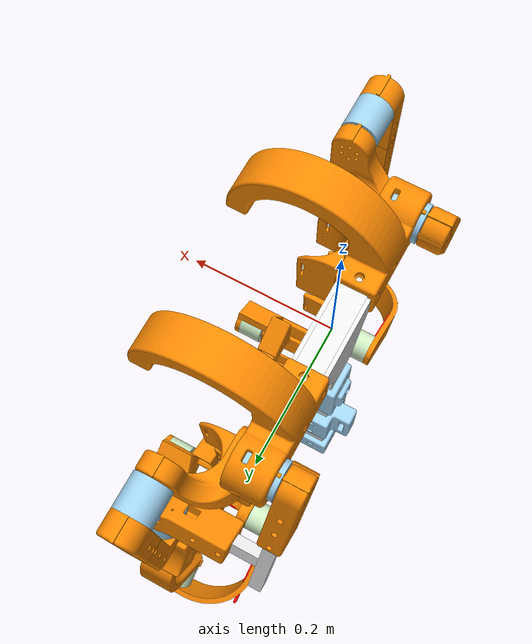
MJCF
<?xml version="1.0" ?>
<mujoco model="models">
  <compiler angle="radian" meshdir="assets" autolimits="true"/>
  <default>
    <default class="models">
      <joint frictionloss="0.1" armature="0.005"/>
      <position kp="50" dampratio="1"/>
      <default class="visual">
        <geom type="mesh" contype="0" conaffinity="0" group="2"/>
      </default>
      <default class="collision">
        <geom group="3"/>
      </default>
    </default>
  </default>
  <worldbody>
    <!-- Link dm_j4340_2ec -->
    <body name="dm_j4340_2ec" pos="0 0 0" quat="1 0 0 0" childclass="models">
      <freejoint name="dm_j4340_2ec_freejoint"/>
      <inertial pos="0.00114692 -0.0251961 -0.012025" mass="0.8837" fullinertia="0.0325559 0.00235183 0.0334678 0.00115048 -0.000622082 0.000713939"/>
      <!-- Part 4040x50cm -->
      <geom type="mesh" class="visual" pos="0 0 -0.54" quat="1 0 -0 -0" mesh="4040x50cm" material="4040x50cm_material"/>
      <geom type="mesh" class="collision" pos="0 0 -0.54" quat="1 0 -0 -0" mesh="4040x50cm" material="4040x50cm_material"/>
      <!-- Part v6_4040_belt -->
      <geom type="mesh" class="visual" pos="0.0004 0 -0.33" quat="0 0.707107 0.707107 0" mesh="v6_4040_belt" material="v6_4040_belt_material"/>
      <geom type="mesh" class="collision" pos="0.0004 0 -0.33" quat="0 0.707107 0.707107 0" mesh="v6_4040_belt" material="v6_4040_belt_material"/>
      <!-- Part 4040_ybimu -->
      <geom type="mesh" class="visual" pos="0.0002 -0 -0.23" quat="0.5 -0.5 -0.5 0.5" mesh="4040_ybimu" material="4040_ybimu_material"/>
      <geom type="mesh" class="collision" pos="0.0002 -0 -0.23" quat="0.5 -0.5 -0.5 0.5" mesh="4040_ybimu" material="4040_ybimu_material"/>
      <!-- Part v6_4040_j1_loop_r -->
      <geom type="mesh" class="visual" pos="0 -0.0615 -0.02" quat="1 0 0 0" mesh="v6_4040_j1_loop_r" material="v6_4040_j1_loop_r_material"/>
      <geom type="mesh" class="collision" pos="0 -0.0615 -0.02" quat="1 0 0 0" mesh="v6_4040_j1_loop_r" material="v6_4040_j1_loop_r_material"/>
      <!-- Part dm_j4340_2ec -->
      <geom type="mesh" class="visual" pos="0.015 0.2 -0.02" quat="0 -0.707107 0 0.707107" mesh="dm_j4340_2ec" material="dm_j4340_2ec_material"/>
      <geom type="mesh" class="collision" pos="0.015 0.2 -0.02" quat="0 -0.707107 0 0.707107" mesh="dm_j4340_2ec" material="dm_j4340_2ec_material"/>
      <!-- Part 4040_t_bracket -->
      <geom type="mesh" class="visual" pos="0.02 -0 -0.02" quat="0.5 0.5 0.5 0.5" mesh="4040_t_bracket" material="4040_t_bracket_material"/>
      <geom type="mesh" class="collision" pos="0.02 -0 -0.02" quat="0.5 0.5 0.5 0.5" mesh="4040_t_bracket" material="4040_t_bracket_material"/>
      <!-- Part dm_j4340_2ec_2 -->
      <geom type="mesh" class="visual" pos="0.015 -0.2 -0.02" quat="0.707107 0 -0.707107 0" mesh="dm_j4340_2ec" material="dm_j4340_2ec_material"/>
      <geom type="mesh" class="collision" pos="0.015 -0.2 -0.02" quat="0.707107 0 -0.707107 0" mesh="dm_j4340_2ec" material="dm_j4340_2ec_material"/>
      <!-- Part 4040_t_bracket_2 -->
      <geom type="mesh" class="visual" pos="-0.02 -0 -0.02" quat="0.5 0.5 -0.5 -0.5" mesh="4040_t_bracket" material="4040_t_bracket_material"/>
      <geom type="mesh" class="collision" pos="-0.02 -0 -0.02" quat="0.5 0.5 -0.5 -0.5" mesh="4040_t_bracket" material="4040_t_bracket_material"/>
      <!-- Part v6_4040_j1_loop_l -->
      <geom type="mesh" class="visual" pos="0 0.0615 -0.02" quat="1 0 0 0" mesh="v6_4040_j1_loop_l" material="v6_4040_j1_loop_l_material"/>
      <geom type="mesh" class="collision" pos="0 0.0615 -0.02" quat="1 0 0 0" mesh="v6_4040_j1_loop_l" material="v6_4040_j1_loop_l_material"/>
      <!-- Part 4040x30cm -->
      <geom type="mesh" class="visual" pos="0 0.15 -0.02" quat="0.707107 0.707107 0 -0" mesh="4040x30cm" material="4040x30cm_material"/>
      <geom type="mesh" class="collision" pos="0 0.15 -0.02" quat="0.707107 0.707107 0 -0" mesh="4040x30cm" material="4040x30cm_material"/>
      <!-- Part 4040_cap -->
      <geom type="mesh" class="visual" pos="0 0 -0.55" quat="1 0 -0 -0" mesh="4040_cap" material="4040_cap_material"/>
      <geom type="mesh" class="collision" pos="0 0 -0.55" quat="1 0 -0 -0" mesh="4040_cap" material="4040_cap_material"/>
      <!-- Frame imu -->
      <site group="3" name="imu" pos="-0.0298 -0 -0.229564" quat="0.707107 0 -0.707107 0"/>
      <!-- Link v6_j1_20 -->
      <body name="v6_j1_20" pos="-0.0383 -0.2 -0.02" quat="0.183013 0.683013 -0.183013 -0.683013">
        <!-- Joint from dm_j4340_2ec to v6_j1_20 -->
        <joint axis="0 0 1" name="RJ1" type="hinge"/>
        <inertial pos="0.150386 -5.99e-10 -0.0862657" mass="0.64749" fullinertia="0.0032465 0.00514141 0.00215547 6e-12 0.00180143 1.8e-11"/>
        <!-- Part v6_20_j2 -->
        <geom type="mesh" class="visual" pos="-0.0081 -0 0.036052" quat="0 -1 -0 0" mesh="v6_20_j2" material="v6_20_j2_material"/>
        <geom type="mesh" class="collision" pos="-0.0081 -0 0.036052" quat="0 -1 -0 0" mesh="v6_20_j2" material="v6_20_j2_material"/>
        <!-- Part v6_j1_20 -->
        <geom type="mesh" class="visual" pos="-0 0 0.036" quat="0 1 0 0" mesh="v6_j1_20" material="v6_j1_20_material"/>
        <geom type="mesh" class="collision" pos="-0 0 0.036" quat="0 1 0 0" mesh="v6_j1_20" material="v6_j1_20_material"/>
        <!-- Part 2020x20cm -->
        <geom type="mesh" class="visual" pos="0.2253 -0 0.018" quat="0 0.707107 0 -0.707107" mesh="2020x20cm" material="2020x20cm_material"/>
        <geom type="mesh" class="collision" pos="0.2253 -0 0.018" quat="0 0.707107 0 -0.707107" mesh="2020x20cm" material="2020x20cm_material"/>
        <!-- Part dm_j4340_2ec_3 -->
        <geom type="mesh" class="visual" pos="0.1532 0 -0.139098" quat="0.707107 -0 0.707107 -0" mesh="dm_j4340_2ec" material="dm_j4340_2ec_material"/>
        <geom type="mesh" class="collision" pos="0.1532 0 -0.139098" quat="0.707107 -0 0.707107 -0" mesh="dm_j4340_2ec" material="dm_j4340_2ec_material"/>
        <!-- Part 2020x10cm -->
        <geom type="mesh" class="visual" pos="0.1653 -0 -0.092" quat="0.707107 0 0 0.707107" mesh="2020x10cm" material="2020x10cm_material"/>
        <geom type="mesh" class="collision" pos="0.1653 -0 -0.092" quat="0.707107 0 0 0.707107" mesh="2020x10cm" material="2020x10cm_material"/>
        <!-- Link v6_20_j3 -->
        <body name="v6_20_j3" pos="0.2065 0 -0.139098" quat="0.5 0.5 0.5 0.5">
          <!-- Joint from v6_j1_20 to v6_20_j3 -->
          <joint axis="0 0 1" name="RJ2" type="hinge"/>
          <inertial pos="0.0816108 2.273e-09 -0.108365" mass="0.6629" fullinertia="0.00347714 0.00399968 0.000810527 1.64e-10 0.00105864 -1.66e-10"/>
          <!-- Part v6_j2_20 -->
          <geom type="mesh" class="visual" pos="0 -0.0285 0.0075" quat="0.683013 -0.683013 -0.183013 -0.183013" mesh="v6_j2_20" material="v6_j2_20_material"/>
          <geom type="mesh" class="collision" pos="0 -0.0285 0.0075" quat="0.683013 -0.683013 -0.183013 -0.183013" mesh="v6_j2_20" material="v6_j2_20_material"/>
          <!-- Part 2020x20cm_2 -->
          <geom type="mesh" class="visual" pos="0.127501 -0 -0.135474" quat="0.683013 0.183013 -0.183013 -0.683013" mesh="2020x20cm" material="2020x20cm_material"/>
          <geom type="mesh" class="collision" pos="0.127501 -0 -0.135474" quat="0.683013 0.183013 -0.183013 -0.683013" mesh="2020x20cm" material="2020x20cm_material"/>
          <!-- Part v6_20_j3 -->
          <geom type="mesh" class="visual" pos="-0 -0.0285 0.0075" quat="0.683013 -0.683013 -0.183013 -0.183013" mesh="v6_20_j3" material="v6_20_j3_material"/>
          <geom type="mesh" class="collision" pos="-0 -0.0285 0.0075" quat="0.683013 -0.683013 -0.183013 -0.183013" mesh="v6_20_j3" material="v6_20_j3_material"/>
          <!-- Part dm_j4340_2ec_4 -->
          <geom type="mesh" class="visual" pos="0.114169 0 -0.148384" quat="0.353553 0.612372 -0.612372 -0.353553" mesh="dm_j4340_2ec" material="dm_j4340_2ec_material"/>
          <geom type="mesh" class="collision" pos="0.114169 0 -0.148384" quat="0.353553 0.612372 -0.612372 -0.353553" mesh="dm_j4340_2ec" material="dm_j4340_2ec_material"/>
          <!-- Link v6_j3_2020_r -->
          <body name="v6_j3_2020_r" pos="0.0680103 0 -0.175034" quat="0.353553 0.612372 -0.612372 -0.353553">
            <!-- Joint from v6_20_j3 to v6_j3_2020_r -->
            <joint axis="0 0 1" name="RJ3" type="hinge"/>
            <inertial pos="-0.0212538 0.197218 0.0388781" mass="0.86248" fullinertia="0.00735386 0.00260883 0.00681043 -0.00104227 0.000890554 0.000819778"/>
            <!-- Part 2020x20cm_3 -->
            <geom type="mesh" class="visual" pos="-0.0681202 0.2685 0.078682" quat="0.707107 0.707107 0 -0" mesh="2020x20cm" material="2020x20cm_material"/>
            <geom type="mesh" class="collision" pos="-0.0681202 0.2685 0.078682" quat="0.707107 0.707107 0 -0" mesh="2020x20cm" material="2020x20cm_material"/>
            <!-- Part v6_2020_j4_r -->
            <geom type="mesh" class="visual" pos="-0.0681202 0.2885 0.078682" quat="0.5 0.5 -0.5 0.5" mesh="v6_2020_j4_r" material="v6_2020_j4_r_material"/>
            <geom type="mesh" class="collision" pos="-0.0681202 0.2885 0.078682" quat="0.5 0.5 -0.5 0.5" mesh="v6_2020_j4_r" material="v6_2020_j4_r_material"/>
            <!-- Part dm_j4340_2ec_5 -->
            <geom type="mesh" class="visual" pos="0.00787981 0.26 0.027332" quat="0 -1 0 -0" mesh="dm_j4340_2ec" material="dm_j4340_2ec_material"/>
            <geom type="mesh" class="collision" pos="0.00787981 0.26 0.027332" quat="0 -1 0 -0" mesh="dm_j4340_2ec" material="dm_j4340_2ec_material"/>
            <!-- Part v6_j3_2020_r -->
            <geom type="mesh" class="visual" pos="-0.0286202 0.0885 0.028682" quat="0.5 0.5 0.5 -0.5" mesh="v6_j3_2020_r" material="v6_j3_2020_r_material"/>
            <geom type="mesh" class="collision" pos="-0.0286202 0.0885 0.028682" quat="0.5 0.5 0.5 -0.5" mesh="v6_j3_2020_r" material="v6_j3_2020_r_material"/>
            <!-- Frame R_shoulder -->
            <site group="3" name="R_shoulder" pos="-0.000120192 -0 0.078682" quat="0.5 0.5 0.5 0.5"/>
            <!-- Link v6_j4_j5_r -->
            <body name="v6_j4_j5_r" pos="0.00787981 0.26 -0.025968" quat="0 0.707107 -0.707107 -0">
              <!-- Joint from v6_j3_2020_r to v6_j4_j5_r -->
              <joint axis="0 0 1" name="RJ4" type="hinge"/>
              <inertial pos="-0.054697 0.00944171 -0.00245461" mass="0.49139" fullinertia="0.00105657 0.00119188 0.000538644 -2.97344e-05 -0.000120659 0.000177465"/>
              <!-- Part dm_j4310_2ec -->
              <geom type="mesh" class="visual" pos="-0.0431803 0 0.0244282" quat="0.348175 0.615447 -0.615447 -0.348175" mesh="dm_j4310_2ec" material="dm_j4310_2ec_material"/>
              <geom type="mesh" class="collision" pos="-0.0431803 0 0.0244282" quat="0.348175 0.615447 -0.615447 -0.348175" mesh="dm_j4310_2ec" material="dm_j4310_2ec_material"/>
              <!-- Part v6_j4_j5_r -->
              <geom type="mesh" class="visual" pos="-0.0285 0.0285 0" quat="0.5 0.5 0.5 -0.5" mesh="v6_j4_j5_r" material="v6_j4_j5_r_material"/>
              <geom type="mesh" class="collision" pos="-0.0285 0.0285 0" quat="0.5 0.5 0.5 -0.5" mesh="v6_j4_j5_r" material="v6_j4_j5_r_material"/>
              <!-- Link v6_wrist_j5_j6 -->
              <body name="v6_wrist_j5_j6" pos="-0.0825226 -0 0.000785249" quat="0 -0.870373 0 0.492393">
                <!-- Joint from v6_j4_j5_r to v6_wrist_j5_j6 -->
                <joint axis="0 0 1" name="RJ5" type="hinge"/>
                <inertial pos="-0.145145 7.46224e-05 0.168843" mass="0.4484" fullinertia="0.00261478 0.00340573 0.00098092 -2.29433e-06 0.00132169 3.71339e-06"/>
                <!-- Part v6_wrist_j5_j6 -->
                <geom type="mesh" class="visual" pos="0 -0.0285 0.0075" quat="0.707107 -0.707107 -0 -0" mesh="v6_wrist_j5_j6" material="v6_wrist_j5_j6_material"/>
                <geom type="mesh" class="collision" pos="0 -0.0285 0.0075" quat="0.707107 -0.707107 -0 -0" mesh="v6_wrist_j5_j6" material="v6_wrist_j5_j6_material"/>
                <!-- Part v6_xt30_2_2_50cm -->
                <geom type="mesh" class="visual" pos="-0.0816102 0.005 0.0643898" quat="0.270598 0.270598 0.653281 -0.653281" mesh="v6_xt30_2_2_50cm" material="v6_xt30_2_2_50cm_material"/>
                <geom type="mesh" class="collision" pos="-0.0816102 0.005 0.0643898" quat="0.270598 0.270598 0.653281 -0.653281" mesh="v6_xt30_2_2_50cm" material="v6_xt30_2_2_50cm_material"/>
                <!-- Part dm_j4310_2ec_2 -->
                <geom type="mesh" class="visual" pos="-0.146 -0 0.212" quat="0.5 -0.5 -0.5 0.5" mesh="dm_j4310_2ec" material="dm_j4310_2ec_material"/>
                <geom type="mesh" class="collision" pos="-0.146 -0 0.212" quat="0.5 -0.5 -0.5 0.5" mesh="dm_j4310_2ec" material="dm_j4310_2ec_material"/>
                <!-- Link v5_wrist_j6_j7 -->
                <body name="v5_wrist_j6_j7" pos="-0.1919 0 0.212" quat="0 -0.707107 -0 0.707107">
                  <!-- Joint from v6_wrist_j5_j6 to v5_wrist_j6_j7 -->
                  <joint axis="0 0 1" name="RJ6" type="hinge"/>
                  <inertial pos="-0 0.0975631 -0.161926" mass="0.407" fullinertia="0.00180585 0.00164708 0.000326757 0 -0 0.000247612"/>
                  <!-- Part v5_wrist_j6_j7 -->
                  <geom type="mesh" class="visual" pos="0 0.131 -0.0955" quat="0.5 0.5 0.5 -0.5" mesh="v5_wrist_j6_j7" material="v5_wrist_j6_j7_material"/>
                  <geom type="mesh" class="collision" pos="0 0.131 -0.0955" quat="0.5 0.5 0.5 -0.5" mesh="v5_wrist_j6_j7" material="v5_wrist_j6_j7_material"/>
                  <!-- Part dm_j4310_2ec_3 -->
                  <geom type="mesh" class="visual" pos="-0 0.121 -0.191" quat="0.707107 0.707107 0 -0" mesh="dm_j4310_2ec" material="dm_j4310_2ec_material"/>
                  <geom type="mesh" class="collision" pos="-0 0.121 -0.191" quat="0.707107 0.707107 0 -0" mesh="dm_j4310_2ec" material="dm_j4310_2ec_material"/>
                  <!-- Part v6_xt30_2_2_50cm_2 -->
                  <geom type="mesh" class="visual" pos="0 0.121 -0.0925" quat="0.707107 0.707107 0 -0" mesh="v6_xt30_2_2_50cm" material="v6_xt30_2_2_50cm_material"/>
                  <geom type="mesh" class="collision" pos="0 0.121 -0.0925" quat="0.707107 0.707107 0 -0" mesh="v6_xt30_2_2_50cm" material="v6_xt30_2_2_50cm_material"/>
                  <!-- Link v5_wrist_j7_leader_gripper_r -->
                  <body name="v5_wrist_j7_leader_gripper_r" pos="-0 0.0751 -0.191" quat="0.5 0.5 -0.5 0.5">
                    <!-- Joint from v5_wrist_j6_j7 to v5_wrist_j7_leader_gripper_r -->
                    <joint axis="0 0 1" name="RJ7" type="hinge"/>
                    <inertial pos="-0.00205487 0.0647313 0.154012" mass="0.4573" fullinertia="0.00200291 0.00193779 0.000443531 -3.45159e-05 2.74273e-06 -0.000439089"/>
                    <!-- Part v6_xt30_2_2_50cm_3 -->
                    <geom type="mesh" class="visual" pos="0.025 0.0547059 0.0643213" quat="0.5 -0.5 0.5 -0.5" mesh="v6_xt30_2_2_50cm" material="v6_xt30_2_2_50cm_material"/>
                    <geom type="mesh" class="collision" pos="0.025 0.0547059 0.0643213" quat="0.5 -0.5 0.5 -0.5" mesh="v6_xt30_2_2_50cm" material="v6_xt30_2_2_50cm_material"/>
                    <!-- Part v5_wrist_j7_leader_gripper_r -->
                    <geom type="mesh" class="visual" pos="-0 0 0" quat="1 0 -0 -0" mesh="v5_wrist_j7_leader_gripper_r" material="v5_wrist_j7_leader_gripper_r_material"/>
                    <geom type="mesh" class="collision" pos="-0 0 0" quat="1 0 -0 -0" mesh="v5_wrist_j7_leader_gripper_r" material="v5_wrist_j7_leader_gripper_r_material"/>
                    <!-- Part dm_j4310_2ec_4 -->
                    <geom type="mesh" class="visual" pos="0 0.075 0.21" quat="0 -0.707107 0.707107 -0" mesh="dm_j4310_2ec" material="dm_j4310_2ec_material"/>
                    <geom type="mesh" class="collision" pos="0 0.075 0.21" quat="0 -0.707107 0.707107 -0" mesh="dm_j4310_2ec" material="dm_j4310_2ec_material"/>
                    <!-- Frame R_wrist -->
                    <site group="3" name="R_wrist" pos="0 0 0.0751" quat="0.707107 -0 -0 0.707107"/>
                    <!-- Link v5_j8_4finger -->
                    <body name="v5_j8_4finger" pos="-0 0.075 0.1641" quat="0 -0.707107 -0.707107 -0">
                      <!-- Joint from v5_wrist_j7_leader_gripper_r to v5_j8_4finger -->
                      <joint axis="0 0 1" name="RJ8" type="hinge"/>
                      <inertial pos="0.0582262 -2.729e-09 0.031412" mass="0.0384" fullinertia="3.92746e-05 6.14789e-05 2.96973e-05 -1e-12 -1.19931e-05 2e-12"/>
                      <!-- Part v5_j8_4finger -->
                      <geom type="mesh" class="visual" pos="-0 0 0.01" quat="0 1 0 0" mesh="v5_j8_4finger" material="v5_j8_4finger_material"/>
                      <geom type="mesh" class="collision" pos="-0 0 0.01" quat="0 1 0 0" mesh="v5_j8_4finger" material="v5_j8_4finger_material"/>
                    </body>
                  </body>
                </body>
              </body>
            </body>
          </body>
        </body>
      </body>
      <!-- Link dm_j4340_2ec_2 -->
      <body name="dm_j4340_2ec_2" pos="-0.0383 0.2 -0.02" quat="0.183013 -0.683013 -0.183013 0.683013">
        <!-- Joint from dm_j4340_2ec to dm_j4340_2ec_2 -->
        <joint axis="0 0 1" name="LJ1" type="hinge"/>
        <inertial pos="0.150386 -5.99e-10 -0.0862657" mass="0.64749" fullinertia="0.0032465 0.00514141 0.00215547 6e-12 0.00180143 1.8e-11"/>
        <!-- Part v6_j1_20_2 -->
        <geom type="mesh" class="visual" pos="-0 -0 0.036" quat="0 1 0 0" mesh="v6_j1_20" material="v6_j1_20_material"/>
        <geom type="mesh" class="collision" pos="-0 -0 0.036" quat="0 1 0 0" mesh="v6_j1_20" material="v6_j1_20_material"/>
        <!-- Part 2020x10cm_2 -->
        <geom type="mesh" class="visual" pos="0.1653 -0 -0.092" quat="0 0 -0 1" mesh="2020x10cm" material="2020x10cm_material"/>
        <geom type="mesh" class="collision" pos="0.1653 -0 -0.092" quat="0 0 -0 1" mesh="2020x10cm" material="2020x10cm_material"/>
        <!-- Part dm_j4340_2ec_6 -->
        <geom type="mesh" class="visual" pos="0.1532 -0 -0.139098" quat="0.707107 -0 0.707107 0" mesh="dm_j4340_2ec" material="dm_j4340_2ec_material"/>
        <geom type="mesh" class="collision" pos="0.1532 -0 -0.139098" quat="0.707107 -0 0.707107 0" mesh="dm_j4340_2ec" material="dm_j4340_2ec_material"/>
        <!-- Part 2020x20cm_4 -->
        <geom type="mesh" class="visual" pos="0.2253 -0 0.018" quat="0 -0.707107 -0 0.707107" mesh="2020x20cm" material="2020x20cm_material"/>
        <geom type="mesh" class="collision" pos="0.2253 -0 0.018" quat="0 -0.707107 -0 0.707107" mesh="2020x20cm" material="2020x20cm_material"/>
        <!-- Part v6_20_j2_2 -->
        <geom type="mesh" class="visual" pos="-0.0081 -0 0.036052" quat="0 1 0 -0" mesh="v6_20_j2" material="v6_20_j2_material"/>
        <geom type="mesh" class="collision" pos="-0.0081 -0 0.036052" quat="0 1 0 -0" mesh="v6_20_j2" material="v6_20_j2_material"/>
        <!-- Link dm_j4340_2ec_3 -->
        <body name="dm_j4340_2ec_3" pos="0.2065 -0 -0.139098" quat="0.5 -0.5 0.5 -0.5">
          <!-- Joint from dm_j4340_2ec_2 to dm_j4340_2ec_3 -->
          <joint axis="0 0 1" name="LJ2" type="hinge"/>
          <inertial pos="0.0816108 2.273e-09 -0.108365" mass="0.6629" fullinertia="0.00347714 0.00399968 0.000810527 1.64e-10 0.00105864 -1.66e-10"/>
          <!-- Part v6_j2_20_2 -->
          <geom type="mesh" class="visual" pos="0 -0.0285 0.0075" quat="0.683013 -0.683013 -0.183013 -0.183013" mesh="v6_j2_20" material="v6_j2_20_material"/>
          <geom type="mesh" class="collision" pos="0 -0.0285 0.0075" quat="0.683013 -0.683013 -0.183013 -0.183013" mesh="v6_j2_20" material="v6_j2_20_material"/>
          <!-- Part v6_20_j3_2 -->
          <geom type="mesh" class="visual" pos="0 -0.0285 0.0075" quat="0.683013 -0.683013 -0.183013 -0.183013" mesh="v6_20_j3" material="v6_20_j3_material"/>
          <geom type="mesh" class="collision" pos="0 -0.0285 0.0075" quat="0.683013 -0.683013 -0.183013 -0.183013" mesh="v6_20_j3" material="v6_20_j3_material"/>
          <!-- Part 2020x20cm_5 -->
          <geom type="mesh" class="visual" pos="0.0275006 -0 0.0377311" quat="0.183013 0.683013 0.683013 0.183013" mesh="2020x20cm" material="2020x20cm_material"/>
          <geom type="mesh" class="collision" pos="0.0275006 -0 0.0377311" quat="0.183013 0.683013 0.683013 0.183013" mesh="2020x20cm" material="2020x20cm_material"/>
          <!-- Part dm_j4340_2ec_7 -->
          <geom type="mesh" class="visual" pos="0.114169 0 -0.148384" quat="0.353553 0.612372 -0.612372 -0.353553" mesh="dm_j4340_2ec" material="dm_j4340_2ec_material"/>
          <geom type="mesh" class="collision" pos="0.114169 0 -0.148384" quat="0.353553 0.612372 -0.612372 -0.353553" mesh="dm_j4340_2ec" material="dm_j4340_2ec_material"/>
          <!-- Link v6_j3_2020_l -->
          <body name="v6_j3_2020_l" pos="0.0680103 -0 -0.175034" quat="0.353553 -0.612372 -0.612372 0.353553">
            <!-- Joint from dm_j4340_2ec_3 to v6_j3_2020_l -->
            <joint axis="0 0 1" name="LJ3" type="hinge"/>
            <inertial pos="-0.0211335 -0.197218 0.0388781" mass="0.86248" fullinertia="0.00735383 0.00260882 0.0068104 0.00104226 0.00089055 -0.00081978"/>
            <!-- Part v6_j3_2020_l -->
            <geom type="mesh" class="visual" pos="-0.0285 -0.0885 0.248682" quat="0.5 -0.5 -0.5 -0.5" mesh="v6_j3_2020_l" material="v6_j3_2020_l_material"/>
            <geom type="mesh" class="collision" pos="-0.0285 -0.0885 0.248682" quat="0.5 -0.5 -0.5 -0.5" mesh="v6_j3_2020_l" material="v6_j3_2020_l_material"/>
            <!-- Part dm_j4340_2ec_8 -->
            <geom type="mesh" class="visual" pos="0.008 -0.26 0.027332" quat="0 -1 -0 -0" mesh="dm_j4340_2ec" material="dm_j4340_2ec_material"/>
            <geom type="mesh" class="collision" pos="0.008 -0.26 0.027332" quat="0 -1 -0 -0" mesh="dm_j4340_2ec" material="dm_j4340_2ec_material"/>
            <!-- Part 2020x20cm_6 -->
            <geom type="mesh" class="visual" pos="-0.068 -0.2685 0.078682" quat="0.707107 -0.707107 0 0" mesh="2020x20cm" material="2020x20cm_material"/>
            <geom type="mesh" class="collision" pos="-0.068 -0.2685 0.078682" quat="0.707107 -0.707107 0 0" mesh="2020x20cm" material="2020x20cm_material"/>
            <!-- Part v6_2020_j4_l -->
            <geom type="mesh" class="visual" pos="-0.068 -0.2885 0.214682" quat="0.5 -0.5 0.5 0.5" mesh="v6_2020_j4_l" material="v6_2020_j4_l_material"/>
            <geom type="mesh" class="collision" pos="-0.068 -0.2885 0.214682" quat="0.5 -0.5 0.5 0.5" mesh="v6_2020_j4_l" material="v6_2020_j4_l_material"/>
            <!-- Frame L_shoulder -->
            <site group="3" name="L_shoulder" pos="0 -0 0.078682" quat="0.5 -0.5 0.5 -0.5"/>
            <!-- Link v6_j4_j5_l -->
            <body name="v6_j4_j5_l" pos="0.008 -0.26 -0.025968" quat="0 0.707107 0.707107 0">
              <!-- Joint from v6_j3_2020_l to v6_j4_j5_l -->
              <joint axis="0 0 1" name="LJ4" type="hinge"/>
              <inertial pos="-0.054697 -0.0094417 -0.00245459" mass="0.49139" fullinertia="0.00105657 0.00119187 0.000538643 2.97343e-05 -0.000120659 -0.000177465"/>
              <!-- Part v6_j4_j5_l -->
              <geom type="mesh" class="visual" pos="-0.0285 -0.0285 -0.3253" quat="0.5 -0.5 -0.5 -0.5" mesh="v6_j4_j5_l" material="v6_j4_j5_l_material"/>
              <geom type="mesh" class="collision" pos="-0.0285 -0.0285 -0.3253" quat="0.5 -0.5 -0.5 -0.5" mesh="v6_j4_j5_l" material="v6_j4_j5_l_material"/>
              <!-- Part dm_j4310_2ec_5 -->
              <geom type="mesh" class="visual" pos="-0.0431803 -0 0.0244282" quat="0.348175 -0.615447 -0.615447 0.348175" mesh="dm_j4310_2ec" material="dm_j4310_2ec_material"/>
              <geom type="mesh" class="collision" pos="-0.0431803 -0 0.0244282" quat="0.348175 -0.615447 -0.615447 0.348175" mesh="dm_j4310_2ec" material="dm_j4310_2ec_material"/>
              <!-- Link v6_wrist_j5_j6_2 -->
              <body name="v6_wrist_j5_j6_2" pos="-0.0825226 -0 0.000785249" quat="0 -0.870373 0 0.492393">
                <!-- Joint from v6_j4_j5_l to v6_wrist_j5_j6_2 -->
                <joint axis="0 0 1" name="LJ5" type="hinge"/>
                <inertial pos="-0.145035 -0.000119401 0.168953" mass="0.4484" fullinertia="0.00260463 0.00340197 0.000987304 3.35036e-06 0.00132357 -5.25689e-06"/>
                <!-- Part v6_wrist_j5_j6_2 -->
                <geom type="mesh" class="visual" pos="0 -0.0285 0.0075" quat="0.707107 -0.707107 -0 0" mesh="v6_wrist_j5_j6" material="v6_wrist_j5_j6_material"/>
                <geom type="mesh" class="collision" pos="0 -0.0285 0.0075" quat="0.707107 -0.707107 -0 0" mesh="v6_wrist_j5_j6" material="v6_wrist_j5_j6_material"/>
                <!-- Part dm_j4310_2ec_6 -->
                <geom type="mesh" class="visual" pos="-0.146 0 0.212" quat="0.5 0.5 -0.5 -0.5" mesh="dm_j4310_2ec" material="dm_j4310_2ec_material"/>
                <geom type="mesh" class="collision" pos="-0.146 0 0.212" quat="0.5 0.5 -0.5 -0.5" mesh="dm_j4310_2ec" material="dm_j4310_2ec_material"/>
                <!-- Part v6_xt30_2_2_50cm_4 -->
                <geom type="mesh" class="visual" pos="-0.0787817 -0.005 0.0672183" quat="0.270598 -0.270598 0.653281 0.653281" mesh="v6_xt30_2_2_50cm" material="v6_xt30_2_2_50cm_material"/>
                <geom type="mesh" class="collision" pos="-0.0787817 -0.005 0.0672183" quat="0.270598 -0.270598 0.653281 0.653281" mesh="v6_xt30_2_2_50cm" material="v6_xt30_2_2_50cm_material"/>
                <!-- Link v5_wrist_j6_j7_2 -->
                <body name="v5_wrist_j6_j7_2" pos="-0.1919 -0 0.212" quat="0.707107 0 -0.707107 -0">
                  <!-- Joint from v6_wrist_j5_j6_2 to v5_wrist_j6_j7_2 -->
                  <joint axis="0 0 1" name="LJ6" type="hinge"/>
                  <inertial pos="-0 0.0975631 -0.161926" mass="0.407" fullinertia="0.00180585 0.00164708 0.000326757 0 -0 0.000247612"/>
                  <!-- Part v6_xt30_2_2_50cm_5 -->
                  <geom type="mesh" class="visual" pos="0 0.116 -0.0925" quat="0.707107 -0.707107 0 0" mesh="v6_xt30_2_2_50cm" material="v6_xt30_2_2_50cm_material"/>
                  <geom type="mesh" class="collision" pos="0 0.116 -0.0925" quat="0.707107 -0.707107 0 0" mesh="v6_xt30_2_2_50cm" material="v6_xt30_2_2_50cm_material"/>
                  <!-- Part v5_wrist_j6_j7_2 -->
                  <geom type="mesh" class="visual" pos="0 0.131 -0.0955" quat="0.5 0.5 0.5 -0.5" mesh="v5_wrist_j6_j7" material="v5_wrist_j6_j7_material"/>
                  <geom type="mesh" class="collision" pos="0 0.131 -0.0955" quat="0.5 0.5 0.5 -0.5" mesh="v5_wrist_j6_j7" material="v5_wrist_j6_j7_material"/>
                  <!-- Part dm_j4310_2ec_7 -->
                  <geom type="mesh" class="visual" pos="-0 0.121 -0.191" quat="0.5 0.5 0.5 -0.5" mesh="dm_j4310_2ec" material="dm_j4310_2ec_material"/>
                  <geom type="mesh" class="collision" pos="-0 0.121 -0.191" quat="0.5 0.5 0.5 -0.5" mesh="dm_j4310_2ec" material="dm_j4310_2ec_material"/>
                  <!-- Link dm_j4310_2ec -->
                  <body name="dm_j4310_2ec" pos="-0 0.0751 -0.191" quat="0.5 0.5 0.5 -0.5">
                    <!-- Joint from v5_wrist_j6_j7_2 to dm_j4310_2ec -->
                    <joint axis="0 0 1" name="LJ7" type="hinge"/>
                    <inertial pos="0.00205488 0.0647314 0.154012" mass="0.4573" fullinertia="0.00200291 0.00193779 0.000443531 3.45159e-05 -2.7424e-06 -0.000439089"/>
                    <!-- Part dm_j4310_2ec_8 -->
                    <geom type="mesh" class="visual" pos="0 0.075 0.21" quat="0 -1 0 0" mesh="dm_j4310_2ec" material="dm_j4310_2ec_material"/>
                    <geom type="mesh" class="collision" pos="0 0.075 0.21" quat="0 -1 0 0" mesh="dm_j4310_2ec" material="dm_j4310_2ec_material"/>
                    <!-- Part v5_wrist_j7_leader_gripper_l -->
                    <geom type="mesh" class="visual" pos="-0.25 0 0" quat="1 0 0 0" mesh="v5_wrist_j7_leader_gripper_l" material="v5_wrist_j7_leader_gripper_l_material"/>
                    <geom type="mesh" class="collision" pos="-0.25 0 0" quat="1 0 0 0" mesh="v5_wrist_j7_leader_gripper_l" material="v5_wrist_j7_leader_gripper_l_material"/>
                    <!-- Part v6_xt30_2_2_50cm_6 -->
                    <geom type="mesh" class="visual" pos="-0.03 0.054706 0.0643213" quat="0.5 -0.5 0.5 -0.5" mesh="v6_xt30_2_2_50cm" material="v6_xt30_2_2_50cm_material"/>
                    <geom type="mesh" class="collision" pos="-0.03 0.054706 0.0643213" quat="0.5 -0.5 0.5 -0.5" mesh="v6_xt30_2_2_50cm" material="v6_xt30_2_2_50cm_material"/>
                    <!-- Frame L_wrist -->
                    <site group="3" name="L_wrist" pos="0 -0 0.0751" quat="0.707107 -0 0 0.707107"/>
                    <!-- Link v5_j8_4finger_2 -->
                    <body name="v5_j8_4finger_2" pos="0 0.075 0.1641" quat="0 -0.707107 -0.707107 -0">
                      <!-- Joint from dm_j4310_2ec to v5_j8_4finger_2 -->
                      <joint axis="0 0 1" name="LJ8" type="hinge"/>
                      <inertial pos="0.0582262 -2.729e-09 0.031412" mass="0.0384" fullinertia="3.92746e-05 6.14789e-05 2.96973e-05 -1e-12 -1.19931e-05 2e-12"/>
                      <!-- Part v5_j8_4finger_2 -->
                      <geom type="mesh" class="visual" pos="0 0 0.01" quat="0 1 0 0" mesh="v5_j8_4finger" material="v5_j8_4finger_material"/>
                      <geom type="mesh" class="collision" pos="0 0 0.01" quat="0 1 0 0" mesh="v5_j8_4finger" material="v5_j8_4finger_material"/>
                    </body>
                  </body>
                </body>
              </body>
            </body>
          </body>
        </body>
      </body>
    </body>
  </worldbody>
  <asset>
    <mesh file="v6_j1_20.stl"/>
    <mesh file="v6_20_j3.stl"/>
    <mesh file="2020x10cm.stl"/>
    <mesh file="v6_xt30_2_2_50cm.stl"/>
    <mesh file="dm_j4310_2ec.stl"/>
    <mesh file="4040_ybimu.stl"/>
    <mesh file="v6_j3_2020_r.stl"/>
    <mesh file="v6_wrist_j5_j6.stl"/>
    <mesh file="v5_wrist_j7_leader_gripper_l.stl"/>
    <mesh file="v6_20_j2.stl"/>
    <mesh file="v6_j3_2020_l.stl"/>
    <mesh file="v6_j4_j5_l.stl"/>
    <mesh file="v6_j4_j5_r.stl"/>
    <mesh file="v5_wrist_j7_leader_gripper_r.stl"/>
    <mesh file="2020x20cm.stl"/>
    <mesh file="4040x50cm.stl"/>
    <mesh file="v6_2020_j4_r.stl"/>
    <mesh file="v6_4040_j1_loop_r.stl"/>
    <mesh file="v5_j8_4finger.stl"/>
    <mesh file="v6_4040_j1_loop_l.stl"/>
    <mesh file="4040_t_bracket.stl"/>
    <mesh file="dm_j4340_2ec.stl"/>
    <mesh file="v6_2020_j4_l.stl"/>
    <mesh file="v6_4040_belt.stl"/>
    <mesh file="v6_j2_20.stl"/>
    <mesh file="4040x30cm.stl"/>
    <mesh file="4040_cap.stl"/>
    <mesh file="v5_wrist_j6_j7.stl"/>
    <material name="4040x50cm_material" rgba="0.901961 0.901961 0.901961 1"/>
    <material name="v6_4040_belt_material" rgba="0.615686 0.811765 0.929412 1"/>
    <material name="4040_ybimu_material" rgba="0.615686 0.811765 0.929412 1"/>
    <material name="v6_4040_j1_loop_r_material" rgba="0.972549 0.529412 0.00392157 1"/>
    <material name="dm_j4340_2ec_material" rgba="0.615686 0.811765 0.929412 1"/>
    <material name="4040_t_bracket_material" rgba="0.901961 0.901961 0.901961 1"/>
    <material name="v6_4040_j1_loop_l_material" rgba="0.972549 0.529412 0.00392157 1"/>
    <material name="4040x30cm_material" rgba="0.901961 0.901961 0.901961 1"/>
    <material name="4040_cap_material" rgba="0.615686 0.811765 0.929412 1"/>
    <material name="v6_20_j2_material" rgba="0.972549 0.529412 0.00392157 1"/>
    <material name="v6_j1_20_material" rgba="0.972549 0.529412 0.00392157 1"/>
    <material name="2020x20cm_material" rgba="0.901961 0.901961 0.901961 1"/>
    <material name="2020x10cm_material" rgba="0.901961 0.901961 0.901961 1"/>
    <material name="v6_j2_20_material" rgba="0.972549 0.529412 0.00392157 1"/>
    <material name="v6_20_j3_material" rgba="0.972549 0.529412 0.00392157 1"/>
    <material name="v6_2020_j4_r_material" rgba="0.972549 0.529412 0.00392157 1"/>
    <material name="v6_j3_2020_r_material" rgba="0.972549 0.529412 0.00392157 1"/>
    <material name="dm_j4310_2ec_material" rgba="0.796078 0.905882 0.745098 1"/>
    <material name="v6_j4_j5_r_material" rgba="0.972549 0.529412 0.00392157 1"/>
    <material name="v6_wrist_j5_j6_material" rgba="0.972549 0.529412 0.00392157 1"/>
    <material name="v6_xt30_2_2_50cm_material" rgba="1 0 0 1"/>
    <material name="v5_wrist_j6_j7_material" rgba="0.972549 0.529412 0.00392157 1"/>
    <material name="v5_wrist_j7_leader_gripper_r_material" rgba="0.972549 0.529412 0.00392157 1"/>
    <material name="v5_j8_4finger_material" rgba="0.972549 0.529412 0.00392157 1"/>
    <material name="v6_j3_2020_l_material" rgba="0.972549 0.529412 0.00392157 1"/>
    <material name="v6_2020_j4_l_material" rgba="0.972549 0.529412 0.00392157 1"/>
    <material name="v6_j4_j5_l_material" rgba="0.972549 0.529412 0.00392157 1"/>
    <material name="v5_wrist_j7_leader_gripper_l_material" rgba="0.972549 0.529412 0.00392157 1"/>
  </asset>
  <actuator>
    <position class="models" name="RJ1" joint="RJ1"/>
    <position class="models" name="RJ2" joint="RJ2"/>
    <position class="models" name="RJ3" joint="RJ3"/>
    <position class="models" name="RJ4" joint="RJ4"/>
    <position class="models" name="RJ5" joint="RJ5"/>
    <position class="models" name="RJ6" joint="RJ6"/>
    <position class="models" name="RJ7" joint="RJ7"/>
    <position class="models" name="RJ8" joint="RJ8"/>
    <position class="models" name="LJ1" joint="LJ1"/>
    <position class="models" name="LJ2" joint="LJ2"/>
    <position class="models" name="LJ3" joint="LJ3"/>
    <position class="models" name="LJ4" joint="LJ4"/>
    <position class="models" name="LJ5" joint="LJ5"/>
    <position class="models" name="LJ6" joint="LJ6"/>
    <position class="models" name="LJ7" joint="LJ7"/>
    <position class="models" name="LJ8" joint="LJ8"/>
  </actuator>
  <equality/>
</mujoco>
